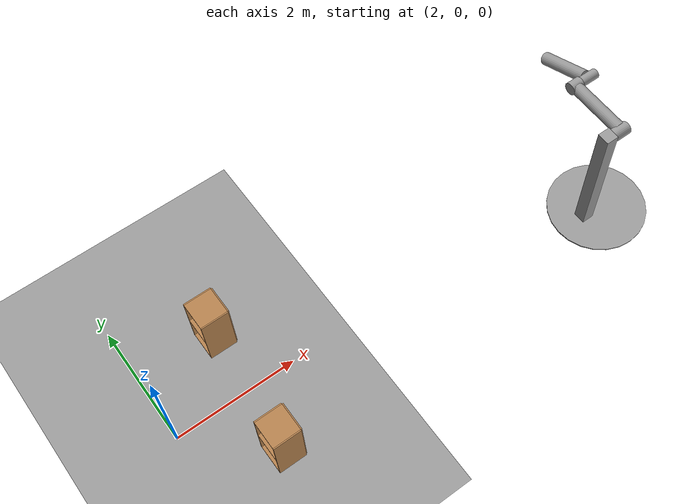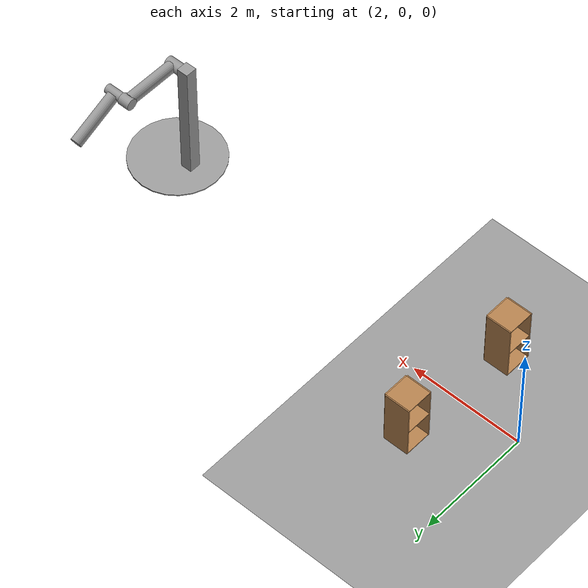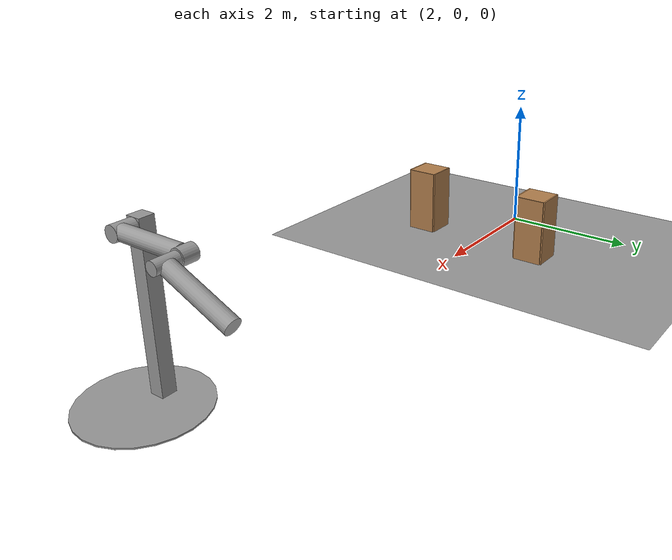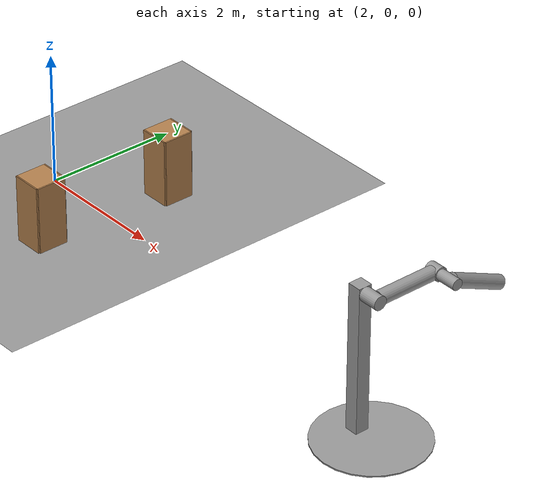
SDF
<sdf version="1.6">
 <world name="default">
  <model name="controlit_ground_plane">
   <static>1</static>
   <link name="link">
    <collision name="collision">
     <geometry><plane><normal>0 0 1</normal><size>100 100</size></plane></geometry>
     <surface>
      <friction><ode><mu>0.8</mu></ode></friction>
      <bounce><restitution_coefficient>0</restitution_coefficient></bounce>
      <contact>
       <bullet>
        <kp>50000</kp>
        <kd>5000</kd>
        <split_impulse>1</split_impulse>
        <split_impulse_penetration_threshold>-0.01</split_impulse_penetration_threshold>
       </bullet>
       <ode><kp>50000</kp><kd>5000</kd><max_vel>0</max_vel></ode>
      </contact>
     </surface>
    </collision>
    <visual name="visual">
     <cast_shadows>0</cast_shadows>
     <geometry><plane><normal>0 0 1</normal><size>10 10</size></plane></geometry>
     <material>
      <script><uri>file://media/materials/scripts/gazebo.material</uri><name>Gazebo/Grey</name></script>
     </material>
    </visual>
   </link>
  </model>
  <light name="sun" type="directional">
   <pose>10 10 10 0 -1 0</pose>
   <diffuse>0.8 0.8 0.8 1</diffuse>
   <specular>0.2 0.2 0.2 1</specular>
   <attenuation>
    <range>1000</range>
    <constant>0.9</constant>
    <linear>0.01</linear>
    <quadratic>0.001</quadratic>
   </attenuation>
   <direction>-0.5 0.1 -0.9</direction>
  </light>
  <gravity>0 0 -9.8</gravity>
  <magnetic_field>6e-06 2.3e-05 -4.2e-05</magnetic_field>
  <atmosphere type="adiabatic"/>
  <physics name="default_physics" default="0" type="ode">
   <max_step_size>0.001</max_step_size>
   <real_time_factor>1</real_time_factor>
   <real_time_update_rate>1000</real_time_update_rate>
  </physics>
  <scene><ambient>0.4 0.4 0.4 1</ambient><background>0.7 0.7 0.7 1</background><shadows>1</shadows></scene>
  <spherical_coordinates>
   <surface_model>EARTH_WGS84</surface_model>
   <latitude_deg>0</latitude_deg>
   <longitude_deg>0</longitude_deg>
   <elevation>0</elevation>
   <heading_deg>0</heading_deg>
  </spherical_coordinates>
  <model name="cabinet">
   <static>1</static>
   <link name="cabinet_bottom_plate">
    <inertial>
     <pose>0 0 -1 0 -0 0</pose>
     <inertia><ixx>2.05</ixx><ixy>0</ixy><ixz>0</ixz><iyy>2.05</iyy><iyz>0</iyz><izz>2.05</izz></inertia>
     <mass>25</mass>
    </inertial>
    <collision name="cabinet_bottom_plate_geom">
     <pose>0 0 0.01 0 -0 0</pose>
     <geometry><box><size>0.45 0.45 0.02</size></box></geometry>
    </collision>
    <visual name="cabinet_bottom_plate_geom_visual">
     <pose>0 0 0.01 0 -0 0</pose>
     <geometry><box><size>0.45 0.45 0.02</size></box></geometry>
     <material>
      <script><uri>file://media/materials/scripts/gazebo.material</uri><name>Gazebo/Wood</name></script>
     </material>
    </visual>
    <collision name="cabinet_bottom_plate_geom_cabinet_back_plate">
     <pose>0.235 0 0.51 0 -0 0</pose>
     <geometry><box><size>0.02 0.45 1.02</size></box></geometry>
    </collision>
    <visual name="cabinet_bottom_plate_geom_cabinet_back_plate_visual">
     <pose>0.235 0 0.51 0 -0 0</pose>
     <geometry><box><size>0.02 0.45 1.02</size></box></geometry>
     <material>
      <script><uri>file://media/materials/scripts/gazebo.material</uri><name>Gazebo/Wood</name></script>
     </material>
    </visual>
    <collision name="cabinet_bottom_plate_geom_cabinet_left_plate">
     <pose>0 0.235 0.51 0 -0 0</pose>
     <geometry><box><size>0.45 0.02 1.02</size></box></geometry>
    </collision>
    <visual name="cabinet_bottom_plate_geom_cabinet_left_plate_visual">
     <pose>0 0.235 0.51 0 -0 0</pose>
     <geometry><box><size>0.45 0.02 1.02</size></box></geometry>
     <material>
      <script><uri>file://media/materials/scripts/gazebo.material</uri><name>Gazebo/Wood</name></script>
     </material>
    </visual>
    <collision name="cabinet_bottom_plate_geom_cabinet_middle_plate">
     <pose>0 0 0.51 0 -0 0</pose>
     <geometry><box><size>0.45 0.45 0.02</size></box></geometry>
    </collision>
    <visual name="cabinet_bottom_plate_geom_cabinet_middle_plate_visual">
     <pose>0 0 0.51 0 -0 0</pose>
     <geometry><box><size>0.45 0.45 0.02</size></box></geometry>
     <material>
      <script><uri>file://media/materials/scripts/gazebo.material</uri><name>Gazebo/Wood</name></script>
     </material>
    </visual>
    <collision name="cabinet_bottom_plate_geom_cabinet_right_plate">
     <pose>0 -0.235 0.51 0 -0 0</pose>
     <geometry><box><size>0.45 0.02 1.02</size></box></geometry>
    </collision>
    <visual name="cabinet_bottom_plate_geom_cabinet_right_plate_visual">
     <pose>0 -0.235 0.51 0 -0 0</pose>
     <geometry><box><size>0.45 0.02 1.02</size></box></geometry>
     <material>
      <script><uri>file://media/materials/scripts/gazebo.material</uri><name>Gazebo/Wood</name></script>
     </material>
    </visual>
    <collision name="cabinet_bottom_plate_geom_cabinet_top_plate">
     <pose>0 0 1.01 0 -0 0</pose>
     <geometry><box><size>0.45 0.45 0.02</size></box></geometry>
    </collision>
    <visual name="cabinet_bottom_plate_geom_cabinet_top_plate_visual">
     <pose>0 0 1.01 0 -0 0</pose>
     <geometry><box><size>0.45 0.45 0.02</size></box></geometry>
     <material>
      <script><uri>file://media/materials/scripts/gazebo.material</uri><name>Gazebo/Wood</name></script>
     </material>
    </visual>
   </link>
   <pose>3.1188 -1.05976 0 0 -0 0</pose>
  </model>
  <model name="cabinet_0">
   <static>1</static>
   <link name="cabinet_bottom_plate">
    <inertial>
     <pose>0 0 -1 0 -0 0</pose>
     <inertia><ixx>2.05</ixx><ixy>0</ixy><ixz>0</ixz><iyy>2.05</iyy><iyz>0</iyz><izz>2.05</izz></inertia>
     <mass>25</mass>
    </inertial>
    <collision name="cabinet_bottom_plate_geom">
     <pose>0 0 0.01 0 -0 0</pose>
     <geometry><box><size>0.45 0.45 0.02</size></box></geometry>
    </collision>
    <visual name="cabinet_bottom_plate_geom_visual">
     <pose>0 0 0.01 0 -0 0</pose>
     <geometry><box><size>0.45 0.45 0.02</size></box></geometry>
     <material>
      <script><uri>file://media/materials/scripts/gazebo.material</uri><name>Gazebo/Wood</name></script>
     </material>
    </visual>
    <collision name="cabinet_bottom_plate_geom_cabinet_back_plate">
     <pose>0.235 0 0.51 0 -0 0</pose>
     <geometry><box><size>0.02 0.45 1.02</size></box></geometry>
    </collision>
    <visual name="cabinet_bottom_plate_geom_cabinet_back_plate_visual">
     <pose>0.235 0 0.51 0 -0 0</pose>
     <geometry><box><size>0.02 0.45 1.02</size></box></geometry>
     <material>
      <script><uri>file://media/materials/scripts/gazebo.material</uri><name>Gazebo/Wood</name></script>
     </material>
    </visual>
    <collision name="cabinet_bottom_plate_geom_cabinet_left_plate">
     <pose>0 0.235 0.51 0 -0 0</pose>
     <geometry><box><size>0.45 0.02 1.02</size></box></geometry>
    </collision>
    <visual name="cabinet_bottom_plate_geom_cabinet_left_plate_visual">
     <pose>0 0.235 0.51 0 -0 0</pose>
     <geometry><box><size>0.45 0.02 1.02</size></box></geometry>
     <material>
      <script><uri>file://media/materials/scripts/gazebo.material</uri><name>Gazebo/Wood</name></script>
     </material>
    </visual>
    <collision name="cabinet_bottom_plate_geom_cabinet_middle_plate">
     <pose>0 0 0.51 0 -0 0</pose>
     <geometry><box><size>0.45 0.45 0.02</size></box></geometry>
    </collision>
    <visual name="cabinet_bottom_plate_geom_cabinet_middle_plate_visual">
     <pose>0 0 0.51 0 -0 0</pose>
     <geometry><box><size>0.45 0.45 0.02</size></box></geometry>
     <material>
      <script><uri>file://media/materials/scripts/gazebo.material</uri><name>Gazebo/Wood</name></script>
     </material>
    </visual>
    <collision name="cabinet_bottom_plate_geom_cabinet_right_plate">
     <pose>0 -0.235 0.51 0 -0 0</pose>
     <geometry><box><size>0.45 0.02 1.02</size></box></geometry>
    </collision>
    <visual name="cabinet_bottom_plate_geom_cabinet_right_plate_visual">
     <pose>0 -0.235 0.51 0 -0 0</pose>
     <geometry><box><size>0.45 0.02 1.02</size></box></geometry>
     <material>
      <script><uri>file://media/materials/scripts/gazebo.material</uri><name>Gazebo/Wood</name></script>
     </material>
    </visual>
    <collision name="cabinet_bottom_plate_geom_cabinet_top_plate">
     <pose>0 0 1.01 0 -0 0</pose>
     <geometry><box><size>0.45 0.45 0.02</size></box></geometry>
    </collision>
    <visual name="cabinet_bottom_plate_geom_cabinet_top_plate_visual">
     <pose>0 0 1.01 0 -0 0</pose>
     <geometry><box><size>0.45 0.45 0.02</size></box></geometry>
     <material>
      <script><uri>file://media/materials/scripts/gazebo.material</uri><name>Gazebo/Wood</name></script>
     </material>
    </visual>
   </link>
   <pose>3.27509 1.00585 0 0 -0 0</pose>
  </model>
  <model name="double_pendulum_with_base">
   <link name="base">
    <inertial>
     <mass>100</mass>
     <inertia><ixx>1</ixx><ixy>0</ixy><ixz>0</ixz><iyy>1</iyy><iyz>0</iyz><izz>1</izz></inertia>
    </inertial>
    <visual name="vis_plate_on_ground">
     <pose>0 0 0.01 0 -0 0</pose>
     <geometry><cylinder><radius>0.8</radius><length>0.02</length></cylinder></geometry>
     <material>
      <script><uri>file://media/materials/scripts/gazebo.material</uri><name>Gazebo/Grey</name></script>
     </material>
    </visual>
    <visual name="vis_pole">
     <pose>-0.275 0 1.1 0 -0 0</pose>
     <geometry><box><size>0.2 0.2 2.2</size></box></geometry>
     <material>
      <script><uri>file://media/materials/scripts/gazebo.material</uri><name>Gazebo/Grey</name></script>
     </material>
    </visual>
    <collision name="col_plate_on_ground">
     <pose>0 0 0.01 0 -0 0</pose>
     <geometry><cylinder><radius>0.8</radius><length>0.02</length></cylinder></geometry>
    </collision>
    <collision name="col_pole">
     <pose>-0.275 0 1.1 0 -0 0</pose>
     <geometry><box><size>0.2 0.2 2.2</size></box></geometry>
    </collision>
   </link>
   <link name="upper_link">
    <pose>0 0 2.1 -1.5708 0 0</pose>
    <inertial>
     <pose>0 0 0.5 0 -0 0</pose>
     <inertia><ixx>1</ixx><ixy>0</ixy><ixz>0</ixz><iyy>1</iyy><iyz>0</iyz><izz>1</izz></inertia>
     <mass>1</mass>
    </inertial>
    <visual name="vis_upper_joint">
     <pose>-0.05 0 0 3.14159 1.57079 3.14159</pose>
     <geometry><cylinder><radius>0.1</radius><length>0.3</length></cylinder></geometry>
     <material>
      <script><uri>file://media/materials/scripts/gazebo.material</uri><name>Gazebo/Grey</name></script>
     </material>
    </visual>
    <visual name="vis_lower_joint">
     <pose>0 0 1 3.14159 1.57079 3.14159</pose>
     <geometry><cylinder><radius>0.1</radius><length>0.2</length></cylinder></geometry>
     <material>
      <script><uri>file://media/materials/scripts/gazebo.material</uri><name>Gazebo/Grey</name></script>
     </material>
    </visual>
    <visual name="vis_cylinder">
     <pose>0 0 0.5 0 -0 0</pose>
     <geometry><cylinder><radius>0.1</radius><length>0.9</length></cylinder></geometry>
     <material>
      <script><uri>file://media/materials/scripts/gazebo.material</uri><name>Gazebo/Grey</name></script>
     </material>
    </visual>
    <collision name="col_upper_joint">
     <pose>-0.05 0 0 3.14159 1.57079 3.14159</pose>
     <geometry><cylinder><radius>0.1</radius><length>0.3</length></cylinder></geometry>
    </collision>
    <collision name="col_lower_joint">
     <pose>0 0 1 3.14159 1.57079 3.14159</pose>
     <geometry><cylinder><radius>0.1</radius><length>0.2</length></cylinder></geometry>
    </collision>
    <collision name="col_cylinder">
     <pose>0 0 0.5 0 -0 0</pose>
     <geometry><cylinder><radius>0.1</radius><length>0.9</length></cylinder></geometry>
    </collision>
   </link>
   <link name="lower_link">
    <pose>0.25 1 2.1 -2 0 0</pose>
    <inertial>
     <pose>0 0 0.5 0 -0 0</pose>
     <inertia><ixx>1</ixx><ixy>0</ixy><ixz>0</ixz><iyy>1</iyy><iyz>0</iyz><izz>1</izz></inertia>
     <mass>1</mass>
    </inertial>
    <visual name="vis_lower_joint">
     <pose>0 0 0 3.14159 1.57079 3.14159</pose>
     <geometry><cylinder><radius>0.08</radius><length>0.3</length></cylinder></geometry>
     <material>
      <script><uri>file://media/materials/scripts/gazebo.material</uri><name>Gazebo/Grey</name></script>
     </material>
    </visual>
    <visual name="vis_cylinder">
     <pose>0 0 0.5 0 -0 0</pose>
     <geometry><cylinder><radius>0.1</radius><length>0.9</length></cylinder></geometry>
     <material>
      <script><uri>file://media/materials/scripts/gazebo.material</uri><name>Gazebo/Grey</name></script>
     </material>
    </visual>
    <collision name="col_lower_joint">
     <pose>0 0 0 3.14159 1.57079 3.14159</pose>
     <geometry><cylinder><radius>0.08</radius><length>0.3</length></cylinder></geometry>
    </collision>
    <collision name="col_cylinder">
     <pose>0 0 0.5 0 -0 0</pose>
     <geometry><cylinder><radius>0.1</radius><length>0.9</length></cylinder></geometry>
    </collision>
   </link>
   <joint name="upper_joint" type="revolute">
    <parent>base</parent>
    <child>upper_link</child>
    <axis>
     <xyz>1 0 0</xyz>
     <use_parent_model_frame>1</use_parent_model_frame>
     <limit><lower>-1e+16</lower><upper>1e+16</upper></limit>
     <dynamics><spring_reference>0</spring_reference><spring_stiffness>0</spring_stiffness></dynamics>
    </axis>
   </joint>
   <joint name="lower_joint" type="revolute">
    <parent>upper_link</parent>
    <child>lower_link</child>
    <axis>
     <xyz>1 0 0</xyz>
     <use_parent_model_frame>1</use_parent_model_frame>
     <limit><lower>-1e+16</lower><upper>1e+16</upper></limit>
     <dynamics><spring_reference>0</spring_reference><spring_stiffness>0</spring_stiffness></dynamics>
    </axis>
   </joint>
   <pose>9.4223 -0.682777 -0.01553 0.000135 0.005583 -1.7e-05</pose>
  </model>
 </world>
</sdf>
